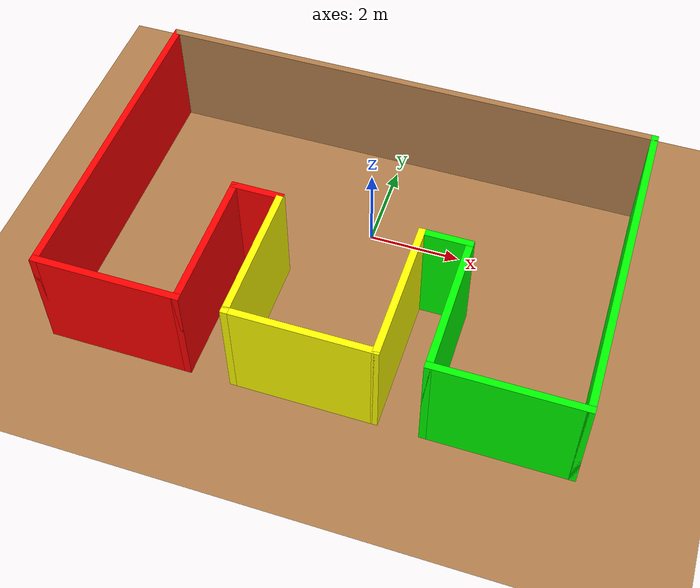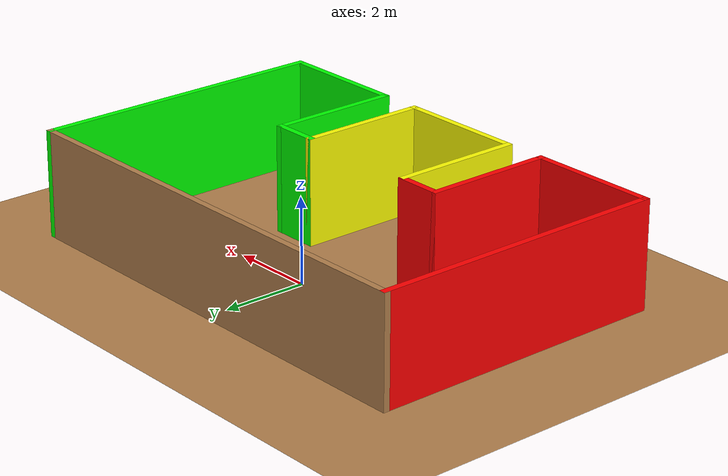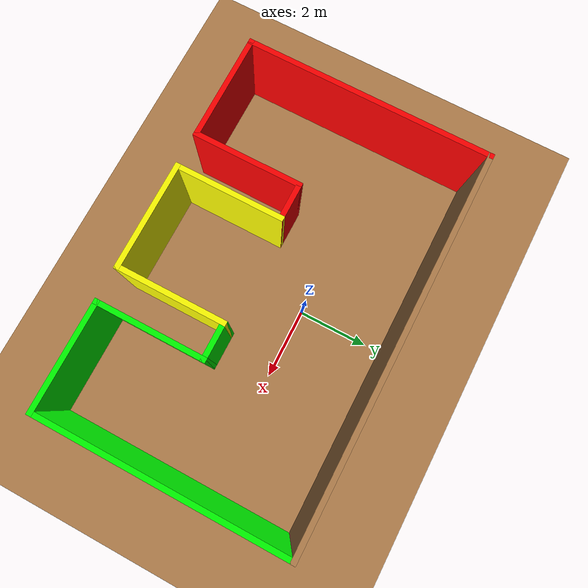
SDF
<sdf version="1.10">
 <world name="default">
  <gravity>0 0 -9.8000000000000007</gravity>
  <magnetic_field>6.0000000000000002e-06 2.3e-05 -4.1999999999999998e-05</magnetic_field>
  <atmosphere type="adiabatic"/>
  <physics name="default_physics" default="false" type="ode">
   <max_step_size>0.001</max_step_size>
   <real_time_factor>1</real_time_factor>
   <real_time_update_rate>1000</real_time_update_rate>
  </physics>
  <scene>
   <ambient>0.400000006 0.400000006 0.400000006 1</ambient>
   <background>0.699999988 0.699999988 0.699999988 1</background>
   <shadows>true</shadows>
  </scene>
  <spherical_coordinates>
   <surface_model>EARTH_WGS84</surface_model>
   <latitude_deg>0</latitude_deg>
   <longitude_deg>0</longitude_deg>
   <elevation>0</elevation>
   <heading_deg>0</heading_deg>
  </spherical_coordinates>
  <model name="ground_plane">
   <static>true</static>
   <link name="link">
    <collision name="collision">
     <geometry><plane><normal>0 0 1</normal><size>100 100</size></plane></geometry>
     <surface>
      <contact><collide_bitmask>65535</collide_bitmask></contact>
      <friction><ode><mu>100</mu><mu2>50</mu2></ode></friction>
     </surface>
    </collision>
    <visual name="visual">
     <cast_shadows>false</cast_shadows>
     <geometry><plane><normal>0 0 1</normal><size>100 100</size></plane></geometry>
     <material>
      <script><uri>file://media/materials/scripts/gazebo.material</uri><name>Gazebo/Wood</name></script>
     </material>
    </visual>
    <inertial>
     <mass>1</mass>
     <inertia><ixx>1</ixx><ixy>0</ixy><ixz>0</ixz><iyy>1</iyy><iyz>0</iyz><izz>1</izz></inertia>
    </inertial>
   </link>
  </model>
  <model name="warehouse">
   <pose>0 -1 0 0 0 0</pose>
   <link name="Wall_13">
    <collision name="Wall_13_Collision">
     <geometry><box><size>7.1500000000000004 0.14999999999999999 2.5</size></box></geometry>
     <pose>0 0 1.25 0 0 0</pose>
    </collision>
    <visual name="Wall_13_Visual">
     <pose>0 0 1.25 0 0 0</pose>
     <geometry><box><size>7.1500000000000004 0.14999999999999999 2.5</size></box></geometry>
     <material><ambient>1 0 0 1</ambient><diffuse>1 0 0 1</diffuse></material>
     <meta><layer>0</layer></meta>
    </visual>
    <pose>-5.5 0 0 0 0 -1.5708</pose>
    <inertial>
     <mass>1</mass>
     <inertia><ixx>1</ixx><ixy>0</ixy><ixz>0</ixz><iyy>1</iyy><iyz>0</iyz><izz>1</izz></inertia>
    </inertial>
   </link>
   <link name="Wall_14">
    <collision name="Wall_14_Collision">
     <geometry><box><size>3.1499999999999999 0.14999999999999999 2.5</size></box></geometry>
     <pose>0 0 1.25 0 0 0</pose>
    </collision>
    <visual name="Wall_14_Visual">
     <pose>0 0 1.25 0 0 0</pose>
     <geometry><box><size>3.1499999999999999 0.14999999999999999 2.5</size></box></geometry>
     <material><ambient>1 0 0 1</ambient><diffuse>1 0 0 1</diffuse></material>
     <meta><layer>0</layer></meta>
    </visual>
    <pose>-3.9999999999999982 -3.4999999999999987 0 0 0 7.7715611723760958e-16</pose>
    <inertial>
     <mass>1</mass>
     <inertia><ixx>1</ixx><ixy>0</ixy><ixz>0</ixz><iyy>1</iyy><iyz>0</iyz><izz>1</izz></inertia>
    </inertial>
   </link>
   <link name="Wall_15">
    <collision name="Wall_15_Collision">
     <geometry><box><size>3.1499999999999999 0.14999999999999999 2.5</size></box></geometry>
     <pose>0 0 1.25 0 0 0</pose>
    </collision>
    <visual name="Wall_15_Visual">
     <pose>0 0 1.25 0 0 0</pose>
     <geometry><box><size>3.1499999999999999 0.14999999999999999 2.5</size></box></geometry>
     <material><ambient>1 0 0 1</ambient><diffuse>1 0 0 1</diffuse></material>
     <meta><layer>0</layer></meta>
    </visual>
    <pose>-2.4999999999999991 -1.9999999999999969 0 0 0 1.5708000000000011</pose>
    <inertial>
     <mass>1</mass>
     <inertia><ixx>1</ixx><ixy>0</ixy><ixz>0</ixz><iyy>1</iyy><iyz>0</iyz><izz>1</izz></inertia>
    </inertial>
   </link>
   <link name="Wall_16">
    <collision name="Wall_16_Collision">
     <geometry><box><size>1.1499999999999999 0.14999999999999999 2.5</size></box></geometry>
     <pose>0 0 1.25 0 0 0</pose>
    </collision>
    <visual name="Wall_16_Visual">
     <pose>0 0 1.25 0 0 0</pose>
     <geometry><box><size>1.1499999999999999 0.14999999999999999 2.5</size></box></geometry>
     <material><ambient>1 0 0 1</ambient><diffuse>1 0 0 1</diffuse></material>
     <meta><layer>0</layer></meta>
    </visual>
    <pose>-2.0000000000000004 -0.49999999999999667 0 0 0 7.7715611723760958e-16</pose>
    <inertial>
     <mass>1</mass>
     <inertia><ixx>1</ixx><ixy>0</ixy><ixz>0</ixz><iyy>1</iyy><iyz>0</iyz><izz>1</izz></inertia>
    </inertial>
   </link>
   <link name="Wall_17">
    <collision name="Wall_17_Collision">
     <geometry><box><size>3.1499999999999999 0.14999999999999999 2.5</size></box></geometry>
     <pose>0 0 1.25 0 0 0</pose>
    </collision>
    <visual name="Wall_17_Visual">
     <pose>0 0 1.25 0 0 0</pose>
     <geometry><box><size>3.1499999999999999 0.14999999999999999 2.5</size></box></geometry>
     <material><ambient>1 1 0 1</ambient><diffuse>1 1 0 1</diffuse></material>
     <meta><layer>0</layer></meta>
    </visual>
    <pose>-1.4999999999999991 -1.999999999999996 0 0 0 -1.5707999999999998</pose>
    <inertial>
     <mass>1</mass>
     <inertia><ixx>1</ixx><ixy>0</ixy><ixz>0</ixz><iyy>1</iyy><iyz>0</iyz><izz>1</izz></inertia>
    </inertial>
   </link>
   <link name="Wall_18">
    <collision name="Wall_18_Collision">
     <geometry><box><size>3.1499999999999999 0.14999999999999999 2.5</size></box></geometry>
     <pose>0 0 1.25 0 0 0</pose>
    </collision>
    <visual name="Wall_18_Visual">
     <pose>0 0 1.25 0 0 0</pose>
     <geometry><box><size>3.1499999999999999 0.14999999999999999 2.5</size></box></geometry>
     <material><ambient>1 1 0 1</ambient><diffuse>1 1 0 1</diffuse></material>
     <meta><layer>0</layer></meta>
    </visual>
    <pose>1.7763568394002505e-15 -3.4999999999999951 0 0 0 7.7715611723760958e-16</pose>
    <inertial>
     <mass>1</mass>
     <inertia><ixx>1</ixx><ixy>0</ixy><ixz>0</ixz><iyy>1</iyy><iyz>0</iyz><izz>1</izz></inertia>
    </inertial>
   </link>
   <link name="Wall_19">
    <collision name="Wall_19_Collision">
     <geometry><box><size>3.1499999999999999 0.14999999999999999 2.5</size></box></geometry>
     <pose>0 0 1.25 0 0 0</pose>
    </collision>
    <visual name="Wall_19_Visual">
     <pose>0 0 1.25 0 0 0</pose>
     <geometry><box><size>3.1499999999999999 0.14999999999999999 2.5</size></box></geometry>
     <material><ambient>1 1 0 1</ambient><diffuse>1 1 0 1</diffuse></material>
     <meta><layer>0</layer></meta>
    </visual>
    <pose>1.5000000000000004 -1.9999999999999933 0 0 0 1.5708000000000011</pose>
    <inertial>
     <mass>1</mass>
     <inertia><ixx>1</ixx><ixy>0</ixy><ixz>0</ixz><iyy>1</iyy><iyz>0</iyz><izz>1</izz></inertia>
    </inertial>
   </link>
   <link name="Wall_20">
    <collision name="Wall_20_Collision">
     <geometry><box><size>1.1499999999999999 0.14999999999999999 2.5</size></box></geometry>
     <pose>0 0 1.25 0 0 0</pose>
    </collision>
    <visual name="Wall_20_Visual">
     <pose>0 0 1.25 0 0 0</pose>
     <geometry><box><size>1.1499999999999999 0.14999999999999999 2.5</size></box></geometry>
     <material><ambient>0 1 0 1</ambient><diffuse>0 1 0 1</diffuse></material>
     <meta><layer>0</layer></meta>
    </visual>
    <pose>1.9999999999999998 -0.49999999999999356 0 0 0 7.7715611723760958e-16</pose>
    <inertial>
     <mass>1</mass>
     <inertia><ixx>1</ixx><ixy>0</ixy><ixz>0</ixz><iyy>1</iyy><iyz>0</iyz><izz>1</izz></inertia>
    </inertial>
   </link>
   <link name="Wall_21">
    <collision name="Wall_21_Collision">
     <geometry><box><size>3.1499999999999999 0.14999999999999999 2.5</size></box></geometry>
     <pose>0 0 1.25 0 0 0</pose>
    </collision>
    <visual name="Wall_21_Visual">
     <pose>0 0 1.25 0 0 0</pose>
     <geometry><box><size>3.1499999999999999 0.14999999999999999 2.5</size></box></geometry>
     <material><ambient>0 1 0 1</ambient><diffuse>0 1 0 1</diffuse></material>
     <meta><layer>0</layer></meta>
    </visual>
    <pose>2.5 -1.9999999999999933 0 0 0 -1.5707999999999998</pose>
    <inertial>
     <mass>1</mass>
     <inertia><ixx>1</ixx><ixy>0</ixy><ixz>0</ixz><iyy>1</iyy><iyz>0</iyz><izz>1</izz></inertia>
    </inertial>
   </link>
   <link name="Wall_22">
    <collision name="Wall_22_Collision">
     <geometry><box><size>3.1499999999999999 0.14999999999999999 2.5</size></box></geometry>
     <pose>0 0 1.25 0 0 0</pose>
    </collision>
    <visual name="Wall_22_Visual">
     <pose>0 0 1.25 0 0 0</pose>
     <geometry><box><size>3.1499999999999999 0.14999999999999999 2.5</size></box></geometry>
     <material><ambient>0 1 0 1</ambient><diffuse>0 1 0 1</diffuse></material>
     <meta><layer>0</layer></meta>
    </visual>
    <pose>4.0000000000000018 -3.4999999999999916 0 0 0 7.7715611723760958e-16</pose>
    <inertial>
     <mass>1</mass>
     <inertia><ixx>1</ixx><ixy>0</ixy><ixz>0</ixz><iyy>1</iyy><iyz>0</iyz><izz>1</izz></inertia>
    </inertial>
   </link>
   <link name="Wall_23">
    <collision name="Wall_23_Collision">
     <geometry><box><size>7.1500000000000004 0.14999999999999999 2.5</size></box></geometry>
     <pose>0 0 1.25 0 0 0</pose>
    </collision>
    <visual name="Wall_23_Visual">
     <pose>0 0 1.25 0 0 0</pose>
     <geometry><box><size>7.1500000000000004 0.14999999999999999 2.5</size></box></geometry>
     <material><ambient>0 1 0 1</ambient><diffuse>0 1 0 1</diffuse></material>
     <meta><layer>0</layer></meta>
    </visual>
    <pose>5.4999999999999991 9.1038288019262836e-15 0 0 0 1.5708000000000011</pose>
    <inertial>
     <mass>1</mass>
     <inertia><ixx>1</ixx><ixy>0</ixy><ixz>0</ixz><iyy>1</iyy><iyz>0</iyz><izz>1</izz></inertia>
    </inertial>
   </link>
   <link name="Wall_24">
    <collision name="Wall_24_Collision">
     <geometry><box><size>11.15 0.14999999999999999 2.5</size></box></geometry>
     <pose>0 0 1.25 0 0 0</pose>
    </collision>
    <visual name="Wall_24_Visual">
     <pose>0 0 1.25 0 0 0</pose>
     <geometry><box><size>11.15 0.14999999999999999 2.5</size></box></geometry>
     <material>
      <script><uri>file://media/materials/scripts/gazebo.material</uri><name>Gazebo/Wood</name></script>
     </material>
     <meta><layer>0</layer></meta>
    </visual>
    <pose>-3.6637359812630166e-15 3.500000000000004 0 0 0 3.1415900000000008</pose>
    <inertial>
     <mass>1</mass>
     <inertia><ixx>1</ixx><ixy>0</ixy><ixz>0</ixz><iyy>1</iyy><iyz>0</iyz><izz>1</izz></inertia>
    </inertial>
   </link>
   <static>true</static>
  </model>
  <light name="sun" type="directional">
   <pose>0 0 10 0 0 0</pose>
   <intensity>1</intensity>
   <direction>-0.5 0.10000000000000001 -0.90000000000000002</direction>
   <diffuse>0.800000012 0.800000012 0.800000012 1</diffuse>
   <specular>0.200000003 0.200000003 0.200000003 1</specular>
   <attenuation>
    <range>1000</range>
    <linear>0.01</linear>
    <constant>0.90000000000000002</constant>
    <quadratic>0.001</quadratic>
   </attenuation>
   <spot><inner_angle>0</inner_angle><outer_angle>0</outer_angle><falloff>0</falloff></spot>
  </light>
 </world>
</sdf>
